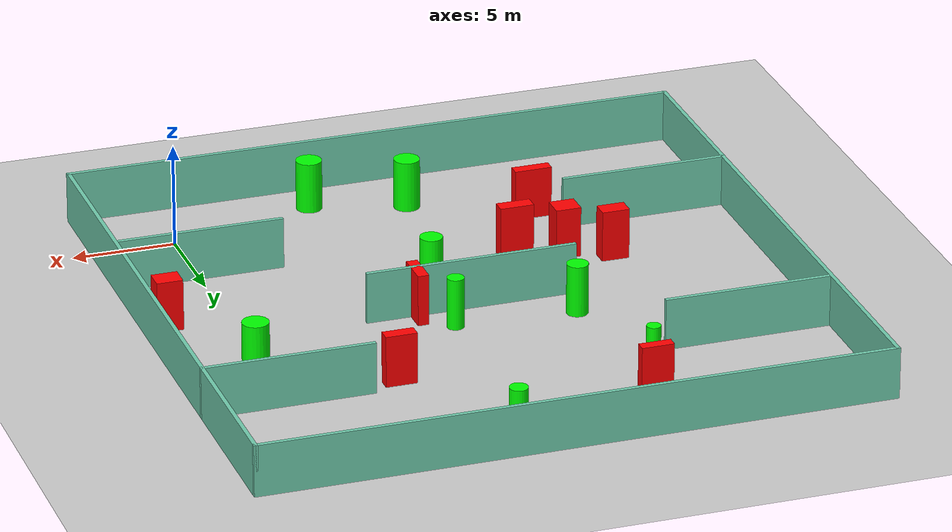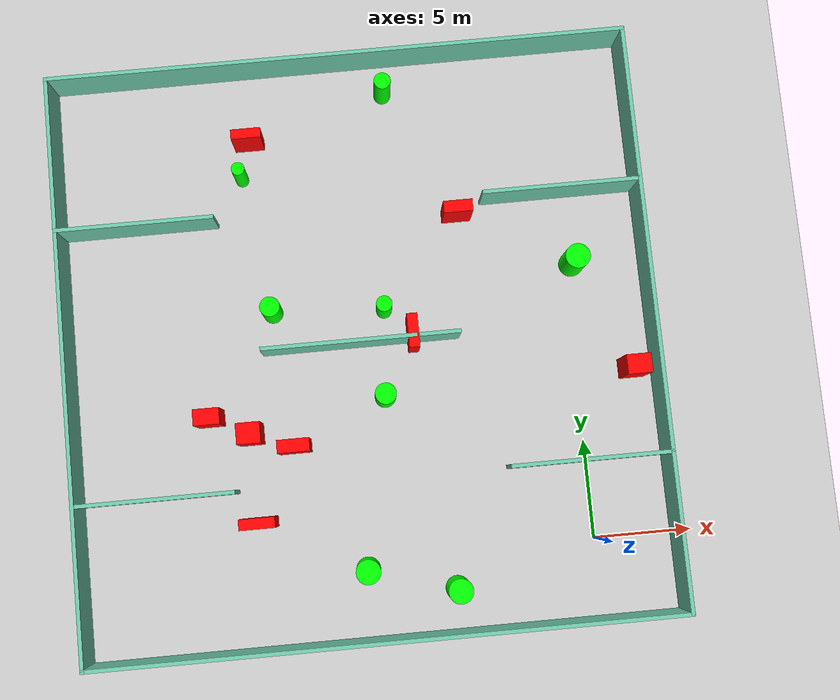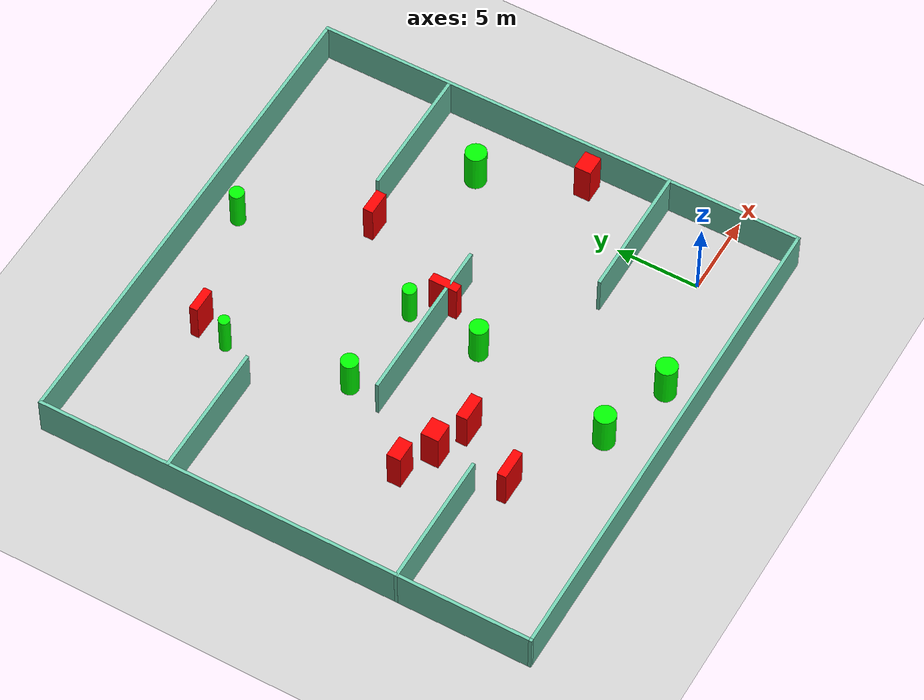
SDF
<sdf version="1.7">
 <world name="default">
  <light name="sun" type="directional">
   <pose>0 0 10 0 -0 0</pose>
   <diffuse>0.8 0.8 0.8 1</diffuse>
   <specular>0.2 0.2 0.2 1</specular>
   <attenuation>
    <range>1000</range>
    <constant>0.9</constant>
    <linear>0.01</linear>
    <quadratic>0.001</quadratic>
   </attenuation>
   <direction>-0.5 0.1 -0.9</direction>
   <spot><inner_angle>0</inner_angle><outer_angle>0</outer_angle><falloff>0</falloff></spot>
  </light>
  <model name="ground_plane">
   <static>1</static>
   <link name="link">
    <collision name="collision">
     <geometry><plane><normal>0 0 1</normal><size>100 100</size></plane></geometry>
     <surface>
      <contact><collide_bitmask>65535</collide_bitmask></contact>
      <friction><ode><mu>100</mu><mu2>50</mu2></ode></friction>
     </surface>
    </collision>
    <visual name="visual">
     <cast_shadows>0</cast_shadows>
     <geometry><plane><normal>0 0 1</normal><size>100 100</size></plane></geometry>
     <material>
      <script><uri>file://media/materials/scripts/gazebo.material</uri><name>Gazebo/Grey</name></script>
     </material>
    </visual>
   </link>
  </model>
  <gravity>0 0 -9.8</gravity>
  <magnetic_field>6e-06 2.3e-05 -4.2e-05</magnetic_field>
  <atmosphere type="adiabatic"/>
  <physics type="ode">
   <max_step_size>0.001</max_step_size>
   <real_time_factor>1</real_time_factor>
   <real_time_update_rate>1000</real_time_update_rate>
  </physics>
  <scene><ambient>0.4 0.4 0.4 1</ambient><background>0.7 0.7 0.7 1</background><shadows>1</shadows></scene>
  <spherical_coordinates>
   <surface_model>EARTH_WGS84</surface_model>
   <latitude_deg>0</latitude_deg>
   <longitude_deg>0</longitude_deg>
   <elevation>0</elevation>
   <heading_deg>0</heading_deg>
  </spherical_coordinates>
  <model name="my_base_walls">
   <link name="Wall_10">
    <collision name="Wall_10_Collision">
     <geometry><box><size>8.2 0.2 2.5</size></box></geometry>
     <pose>0 0 1.25 0 -0 0</pose>
    </collision>
    <visual name="Wall_10_Visual">
     <pose>0 0 1.25 0 -0 0</pose>
     <geometry><box><size>8.2 0.2 2.5</size></box></geometry>
     <material>
      <script><uri>file://media/materials/scripts/gazebo.material</uri><name>Gazebo/Grey</name></script>
      <ambient>0.435294 0.796078 0.67451 1</ambient>
     </material>
     <meta><layer>0</layer></meta>
    </visual>
    <pose>-11 -7 0 0 -0 0</pose>
   </link>
   <link name="Wall_12">
    <collision name="Wall_12_Collision">
     <geometry><box><size>8.2 0.2 2.5</size></box></geometry>
     <pose>0 0 1.25 0 -0 0</pose>
    </collision>
    <visual name="Wall_12_Visual">
     <pose>0 0 1.25 0 -0 0</pose>
     <geometry><box><size>8.2 0.2 2.5</size></box></geometry>
     <material>
      <script><uri>file://media/materials/scripts/gazebo.material</uri><name>Gazebo/Grey</name></script>
      <ambient>0.435294 0.796078 0.67451 1</ambient>
     </material>
     <meta><layer>0</layer></meta>
    </visual>
    <pose>-11 7 0 0 -0 0</pose>
   </link>
   <link name="Wall_14">
    <collision name="Wall_14_Collision">
     <geometry><box><size>8.2 0.2 2.5</size></box></geometry>
     <pose>0 0 1.25 0 -0 0</pose>
    </collision>
    <visual name="Wall_14_Visual">
     <pose>0 0 1.25 0 -0 0</pose>
     <geometry><box><size>8.2 0.2 2.5</size></box></geometry>
     <material>
      <script><uri>file://media/materials/scripts/gazebo.material</uri><name>Gazebo/Grey</name></script>
      <ambient>0.435294 0.796078 0.67451 1</ambient>
     </material>
     <meta><layer>0</layer></meta>
    </visual>
    <pose>11 7 0 0 -0 3.14159</pose>
   </link>
   <link name="Wall_16">
    <collision name="Wall_16_Collision">
     <geometry><box><size>10.2 0.2 2.5</size></box></geometry>
     <pose>0 0 1.25 0 -0 0</pose>
    </collision>
    <visual name="Wall_16_Visual">
     <pose>0 0 1.25 0 -0 0</pose>
     <geometry><box><size>10.2 0.2 2.5</size></box></geometry>
     <material>
      <script><uri>file://media/materials/scripts/gazebo.material</uri><name>Gazebo/Grey</name></script>
      <ambient>0.435294 0.796078 0.67451 1</ambient>
     </material>
     <meta><layer>0</layer></meta>
    </visual>
    <pose>0 0 0 0 -0 3.14159</pose>
   </link>
   <link name="Wall_2">
    <collision name="Wall_2_Collision">
     <geometry><box><size>30.2 0.2 2.5</size></box></geometry>
     <pose>0 0 1.25 0 -0 0</pose>
    </collision>
    <visual name="Wall_2_Visual">
     <pose>0 0 1.25 0 -0 0</pose>
     <geometry><box><size>30.2 0.2 2.5</size></box></geometry>
     <material>
      <script><uri>file://media/materials/scripts/gazebo.material</uri><name>Gazebo/Grey</name></script>
      <ambient>0.435294 0.796078 0.67451 1</ambient>
     </material>
     <meta><layer>0</layer></meta>
    </visual>
    <pose>0 -15 0 0 -0 3.14159</pose>
   </link>
   <link name="Wall_3">
    <collision name="Wall_3_Collision">
     <geometry><box><size>30.2 0.2 2.5</size></box></geometry>
     <pose>0 0 1.25 0 -0 0</pose>
    </collision>
    <visual name="Wall_3_Visual">
     <pose>0 0 1.25 0 -0 0</pose>
     <geometry><box><size>30.2 0.2 2.5</size></box></geometry>
     <material>
      <script><uri>file://media/materials/scripts/gazebo.material</uri><name>Gazebo/Grey</name></script>
      <ambient>0.435294 0.796078 0.67451 1</ambient>
     </material>
     <meta><layer>0</layer></meta>
    </visual>
    <pose>-15 0 0 0 -0 1.5708</pose>
   </link>
   <link name="Wall_4">
    <collision name="Wall_4_Collision">
     <geometry><box><size>30.2 0.2 2.5</size></box></geometry>
     <pose>0 0 1.25 0 -0 0</pose>
    </collision>
    <visual name="Wall_4_Visual">
     <pose>0 0 1.25 0 -0 0</pose>
     <geometry><box><size>30.2 0.2 2.5</size></box></geometry>
     <material>
      <script><uri>file://media/materials/scripts/gazebo.material</uri><name>Gazebo/Grey</name></script>
      <ambient>0.435294 0.796078 0.67451 1</ambient>
     </material>
     <meta><layer>0</layer></meta>
    </visual>
    <pose>0 15 0 0 -0 0</pose>
   </link>
   <link name="Wall_6">
    <collision name="Wall_6_Collision">
     <geometry><box><size>30.2 0.2 2.5</size></box></geometry>
     <pose>0 0 1.25 0 -0 0</pose>
    </collision>
    <visual name="Wall_6_Visual">
     <pose>0 0 1.25 0 -0 0</pose>
     <geometry><box><size>30.2 0.2 2.5</size></box></geometry>
     <material>
      <script><uri>file://media/materials/scripts/gazebo.material</uri><name>Gazebo/Grey</name></script>
      <ambient>0.435294 0.796078 0.67451 1</ambient>
     </material>
     <meta><layer>0</layer></meta>
    </visual>
    <pose>15 0 0 0 -0 1.5708</pose>
   </link>
   <link name="Wall_8">
    <collision name="Wall_8_Collision">
     <geometry><box><size>8.2 0.2 2.5</size></box></geometry>
     <pose>0 0 1.25 0 -0 0</pose>
    </collision>
    <visual name="Wall_8_Visual">
     <pose>0 0 1.25 0 -0 0</pose>
     <geometry><box><size>8.2 0.2 2.5</size></box></geometry>
     <material>
      <script><uri>file://media/materials/scripts/gazebo.material</uri><name>Gazebo/Grey</name></script>
      <ambient>0.435294 0.796078 0.67451 1</ambient>
     </material>
     <meta><layer>0</layer></meta>
    </visual>
    <pose>11 -7 0 0 -0 3.14159</pose>
   </link>
   <static>1</static>
   <pose>-11 11 0 0 -0 0</pose>
  </model>
  <model name="cylinder1">
   <static>1</static>
   <link name="link">
    <inertial>
     <mass>1</mass>
     <inertia><ixx>0.5</ixx><ixy>0</ixy><ixz>0</ixz><iyy>0.5</iyy><iyz>0</iyz><izz>1</izz></inertia>
    </inertial>
    <collision name="collision">
     <geometry><cylinder><radius>0.33942186973293403</radius><length>2.5</length></cylinder></geometry>
    </collision>
    <visual name="visual">
     <geometry><cylinder><radius>0.33942186973293403</radius><length>2.5</length></cylinder></geometry>
     <material>
      <ambient>0 1 0 1</ambient>
      <diffuse>0 1 0 1</diffuse>
      <specular>0.1 0.1 0.1 1</specular>
      <emissive>0 0 0 0</emissive>
     </material>
    </visual>
   </link>
   <pose>-16.468410785587984 20.3603633205438 1.25 0 0 0</pose>
  </model>
  <model name="cylinder2">
   <static>1</static>
   <link name="link">
    <inertial>
     <mass>1</mass>
     <inertia><ixx>0.5</ixx><ixy>0</ixy><ixz>0</ixz><iyy>0.5</iyy><iyz>0</iyz><izz>1</izz></inertia>
    </inertial>
    <collision name="collision">
     <geometry><cylinder><radius>0.4084048973861729</radius><length>2.5</length></cylinder></geometry>
    </collision>
    <visual name="visual">
     <geometry><cylinder><radius>0.4084048973861729</radius><length>2.5</length></cylinder></geometry>
     <material>
      <ambient>0 1 0 1</ambient>
      <diffuse>0 1 0 1</diffuse>
      <specular>0.1 0.1 0.1 1</specular>
      <emissive>0 0 0 0</emissive>
     </material>
    </visual>
   </link>
   <pose>-9.641082184479107 12.718078211525874 1.25 0 0 0</pose>
  </model>
  <model name="cylinder3">
   <static>1</static>
   <link name="link">
    <inertial>
     <mass>1</mass>
     <inertia><ixx>0.5</ixx><ixy>0</ixy><ixz>0</ixz><iyy>0.5</iyy><iyz>0</iyz><izz>1</izz></inertia>
    </inertial>
    <collision name="collision">
     <geometry><cylinder><radius>0.6266251553241764</radius><length>2.5</length></cylinder></geometry>
    </collision>
    <visual name="visual">
     <geometry><cylinder><radius>0.6266251553241764</radius><length>2.5</length></cylinder></geometry>
     <material>
      <ambient>0 1 0 1</ambient>
      <diffuse>0 1 0 1</diffuse>
      <specular>0.1 0.1 0.1 1</specular>
      <emissive>0 0 0 0</emissive>
     </material>
    </visual>
   </link>
   <pose>-11.654741882050196 -0.5127849303642957 1.25 0 0 0</pose>
  </model>
  <model name="cylinder4">
   <static>1</static>
   <link name="link">
    <inertial>
     <mass>1</mass>
     <inertia><ixx>0.5</ixx><ixy>0</ixy><ixz>0</ixz><iyy>0.5</iyy><iyz>0</iyz><izz>1</izz></inertia>
    </inertial>
    <collision name="collision">
     <geometry><cylinder><radius>0.6248745356087861</radius><length>2.5</length></cylinder></geometry>
    </collision>
    <visual name="visual">
     <geometry><cylinder><radius>0.6248745356087861</radius><length>2.5</length></cylinder></geometry>
     <material>
      <ambient>0 1 0 1</ambient>
      <diffuse>0 1 0 1</diffuse>
      <specular>0.1 0.1 0.1 1</specular>
      <emissive>0 0 0 0</emissive>
     </material>
    </visual>
   </link>
   <pose>-7.201815869152377 -1.8583796638175376 1.25 0 0 0</pose>
  </model>
  <model name="cylinder5">
   <static>1</static>
   <link name="link">
    <inertial>
     <mass>1</mass>
     <inertia><ixx>0.5</ixx><ixy>0</ixy><ixz>0</ixz><iyy>0.5</iyy><iyz>0</iyz><izz>1</izz></inertia>
    </inertial>
    <collision name="collision">
     <geometry><cylinder><radius>0.4399547447642283</radius><length>2.5</length></cylinder></geometry>
    </collision>
    <visual name="visual">
     <geometry><cylinder><radius>0.4399547447642283</radius><length>2.5</length></cylinder></geometry>
     <material>
      <ambient>0 1 0 1</ambient>
      <diffuse>0 1 0 1</diffuse>
      <specular>0.1 0.1 0.1 1</specular>
      <emissive>0 0 0 0</emissive>
     </material>
    </visual>
   </link>
   <pose>-8.668495246326374 24.314706555755276 1.25 0 0 0</pose>
  </model>
  <model name="cylinder6">
   <static>1</static>
   <link name="link">
    <inertial>
     <mass>1</mass>
     <inertia><ixx>0.5</ixx><ixy>0</ixy><ixz>0</ixz><iyy>0.5</iyy><iyz>0</iyz><izz>1</izz></inertia>
    </inertial>
    <collision name="collision">
     <geometry><cylinder><radius>0.5465284710153892</radius><length>2.5</length></cylinder></geometry>
    </collision>
    <visual name="visual">
     <geometry><cylinder><radius>0.5465284710153892</radius><length>2.5</length></cylinder></geometry>
     <material>
      <ambient>0 1 0 1</ambient>
      <diffuse>0 1 0 1</diffuse>
      <specular>0.1 0.1 0.1 1</specular>
      <emissive>0 0 0 0</emissive>
     </material>
    </visual>
   </link>
   <pose>-9.984230859868003 8.181444195857061 1.25 0 0 0</pose>
  </model>
  <model name="cylinder7">
   <static>1</static>
   <link name="link">
    <inertial>
     <mass>1</mass>
     <inertia><ixx>0.5</ixx><ixy>0</ixy><ixz>0</ixz><iyy>0.5</iyy><iyz>0</iyz><izz>1</izz></inertia>
    </inertial>
    <collision name="collision">
     <geometry><cylinder><radius>0.5152296455249983</radius><length>2.5</length></cylinder></geometry>
    </collision>
    <visual name="visual">
     <geometry><cylinder><radius>0.5152296455249983</radius><length>2.5</length></cylinder></geometry>
     <material>
      <ambient>0 1 0 1</ambient>
      <diffuse>0 1 0 1</diffuse>
      <specular>0.1 0.1 0.1 1</specular>
      <emissive>0 0 0 0</emissive>
     </material>
    </visual>
   </link>
   <pose>-15.424825840299897 13.093161594789706 1.25 0 0 0</pose>
  </model>
  <model name="cylinder8">
   <static>1</static>
   <link name="link">
    <inertial>
     <mass>1</mass>
     <inertia><ixx>0.5</ixx><ixy>0</ixy><ixz>0</ixz><iyy>0.5</iyy><iyz>0</iyz><izz>1</izz></inertia>
    </inertial>
    <collision name="collision">
     <geometry><cylinder><radius>0.6365753126516966</radius><length>2.5</length></cylinder></geometry>
    </collision>
    <visual name="visual">
     <geometry><cylinder><radius>0.6365753126516966</radius><length>2.5</length></cylinder></geometry>
     <material>
      <ambient>0 1 0 1</ambient>
      <diffuse>0 1 0 1</diffuse>
      <specular>0.1 0.1 0.1 1</specular>
      <emissive>0 0 0 0</emissive>
     </material>
    </visual>
   </link>
   <pose>0.3849507173083886 14.26165714149073 1.25 0 0 0</pose>
  </model>
  <model name="box1">
   <static>1</static>
   <link name="link">
    <inertial>
     <mass>1</mass>
     <inertia><ixx>0.083</ixx><ixy>0</ixy><ixz>0</ixz><iyy>0.083</iyy><iyz>0</iyz><izz>0.083</izz></inertia>
    </inertial>
    <collision name="collision">
     <geometry><box><size>1.337173279620468 0.8324509447361983 2.5</size></box></geometry>
    </collision>
    <visual name="visual">
     <geometry><box><size>1.337173279620468 0.8324509447361983 2.5</size></box></geometry>
     <material>
      <ambient>1 0 0 1</ambient>
      <diffuse>1 0 0 1</diffuse>
      <specular>0.1 0.1 0.1 1</specular>
      <emissive>0 0 0 0</emissive>
     </material>
    </visual>
    <sensor name="my_contact" type="contact">
     <contact><collision>box_collision</collision><topic>__default_topic__</topic></contact>
    </sensor>
   </link>
   <pose>-19.049014689349203 7.858035182946429 1.25 0 0 0</pose>
  </model>
  <model name="box2">
   <static>1</static>
   <link name="link">
    <inertial>
     <mass>1</mass>
     <inertia><ixx>0.083</ixx><ixy>0</ixy><ixz>0</ixz><iyy>0.083</iyy><iyz>0</iyz><izz>0.083</izz></inertia>
    </inertial>
    <collision name="collision">
     <geometry><box><size>1.2227385861324773 1.0777662786062412 2.5</size></box></geometry>
    </collision>
    <visual name="visual">
     <geometry><box><size>1.2227385861324773 1.0777662786062412 2.5</size></box></geometry>
     <material>
      <ambient>1 0 0 1</ambient>
      <diffuse>1 0 0 1</diffuse>
      <specular>0.1 0.1 0.1 1</specular>
      <emissive>0 0 0 0</emissive>
     </material>
    </visual>
    <sensor name="my_contact" type="contact">
     <contact><collision>box_collision</collision><topic>__default_topic__</topic></contact>
    </sensor>
   </link>
   <pose>-17.022319935749866 6.851466181335381 1.25 0 0 0</pose>
  </model>
  <model name="box3">
   <static>1</static>
   <link name="link">
    <inertial>
     <mass>1</mass>
     <inertia><ixx>0.083</ixx><ixy>0</ixy><ixz>0</ixz><iyy>0.083</iyy><iyz>0</iyz><izz>0.083</izz></inertia>
    </inertial>
    <collision name="collision">
     <geometry><box><size>1.251841123252797 1.0005265065980666 2.5</size></box></geometry>
    </collision>
    <visual name="visual">
     <geometry><box><size>1.251841123252797 1.0005265065980666 2.5</size></box></geometry>
     <material>
      <ambient>1 0 0 1</ambient>
      <diffuse>1 0 0 1</diffuse>
      <specular>0.1 0.1 0.1 1</specular>
      <emissive>0 0 0 0</emissive>
     </material>
    </visual>
    <sensor name="my_contact" type="contact">
     <contact><collision>box_collision</collision><topic>__default_topic__</topic></contact>
    </sensor>
   </link>
   <pose>2.8509515314056273 8.519903150744243 1.25 0 0 0</pose>
  </model>
  <model name="box4">
   <static>1</static>
   <link name="link">
    <inertial>
     <mass>1</mass>
     <inertia><ixx>0.083</ixx><ixy>0</ixy><ixz>0</ixz><iyy>0.083</iyy><iyz>0</iyz><izz>0.083</izz></inertia>
    </inertial>
    <collision name="collision">
     <geometry><box><size>1.5417248109703965 0.5048345737858405 2.5</size></box></geometry>
    </collision>
    <visual name="visual">
     <geometry><box><size>1.5417248109703965 0.5048345737858405 2.5</size></box></geometry>
     <material>
      <ambient>1 0 0 1</ambient>
      <diffuse>1 0 0 1</diffuse>
      <specular>0.1 0.1 0.1 1</specular>
      <emissive>0 0 0 0</emissive>
     </material>
    </visual>
    <sensor name="my_contact" type="contact">
     <contact><collision>box_collision</collision><topic>__default_topic__</topic></contact>
    </sensor>
   </link>
   <pose>-15.924392771997875 22.183648142406017 1.25 0 0 0</pose>
  </model>
  <model name="box5">
   <static>1</static>
   <link name="link">
    <inertial>
     <mass>1</mass>
     <inertia><ixx>0.083</ixx><ixy>0</ixy><ixz>0</ixz><iyy>0.083</iyy><iyz>0</iyz><izz>0.083</izz></inertia>
    </inertial>
    <collision name="collision">
     <geometry><box><size>1.8166366736777186 0.5510201293996695 2.5</size></box></geometry>
    </collision>
    <visual name="visual">
     <geometry><box><size>1.8166366736777186 0.5510201293996695 2.5</size></box></geometry>
     <material>
      <ambient>1 0 0 1</ambient>
      <diffuse>1 0 0 1</diffuse>
      <specular>0.1 0.1 0.1 1</specular>
      <emissive>0 0 0 0</emissive>
     </material>
    </visual>
    <sensor name="my_contact" type="contact">
     <contact><collision>box_collision</collision><topic>__default_topic__</topic></contact>
    </sensor>
   </link>
   <pose>-16.944218939330653 2.344794699621854 1.25 0 0 0</pose>
  </model>
  <model name="box6">
   <static>1</static>
   <link name="link">
    <inertial>
     <mass>1</mass>
     <inertia><ixx>0.083</ixx><ixy>0</ixy><ixz>0</ixz><iyy>0.083</iyy><iyz>0</iyz><izz>0.083</izz></inertia>
    </inertial>
    <collision name="collision">
     <geometry><box><size>1.6455312935595063 0.6732291778242777 2.5</size></box></geometry>
    </collision>
    <visual name="visual">
     <geometry><box><size>1.6455312935595063 0.6732291778242777 2.5</size></box></geometry>
     <material>
      <ambient>1 0 0 1</ambient>
      <diffuse>1 0 0 1</diffuse>
      <specular>0.1 0.1 0.1 1</specular>
      <emissive>0 0 0 0</emissive>
     </material>
    </visual>
    <sensor name="my_contact" type="contact">
     <contact><collision>box_collision</collision><topic>__default_topic__</topic></contact>
    </sensor>
   </link>
   <pose>-14.829363278825396 6.02578019797372 1.25 0 0 0</pose>
  </model>
  <model name="box7">
   <static>1</static>
   <link name="link">
    <inertial>
     <mass>1</mass>
     <inertia><ixx>0.083</ixx><ixy>0</ixy><ixz>0</ixz><iyy>0.083</iyy><iyz>0</iyz><izz>0.083</izz></inertia>
    </inertial>
    <collision name="collision">
     <geometry><box><size>0.5408411901401993 1.7336884667978385 2.5</size></box></geometry>
    </collision>
    <visual name="visual">
     <geometry><box><size>0.5408411901401993 1.7336884667978385 2.5</size></box></geometry>
     <material>
      <ambient>1 0 0 1</ambient>
      <diffuse>1 0 0 1</diffuse>
      <specular>0.1 0.1 0.1 1</specular>
      <emissive>0 0 0 0</emissive>
     </material>
    </visual>
    <sensor name="my_contact" type="contact">
     <contact><collision>box_collision</collision><topic>__default_topic__</topic></contact>
    </sensor>
   </link>
   <pose>-8.30212711431848 11.247360688175197 1.25 0 0 0</pose>
  </model>
  <model name="box8">
   <static>1</static>
   <link name="link">
    <inertial>
     <mass>1</mass>
     <inertia><ixx>0.083</ixx><ixy>0</ixy><ixz>0</ixz><iyy>0.083</iyy><iyz>0</iyz><izz>0.083</izz></inertia>
    </inertial>
    <collision name="collision">
     <geometry><box><size>1.495888178201307 0.6089171314189779 2.5</size></box></geometry>
    </collision>
    <visual name="visual">
     <geometry><box><size>1.495888178201307 0.6089171314189779 2.5</size></box></geometry>
     <material>
      <ambient>1 0 0 1</ambient>
      <diffuse>1 0 0 1</diffuse>
      <specular>0.1 0.1 0.1 1</specular>
      <emissive>0 0 0 0</emissive>
     </material>
    </visual>
    <sensor name="my_contact" type="contact">
     <contact><collision>box_collision</collision><topic>__default_topic__</topic></contact>
    </sensor>
   </link>
   <pose>-5.414143808213428 17.39467957929723 1.25 0 0 0</pose>
  </model>
 </world>
</sdf>
